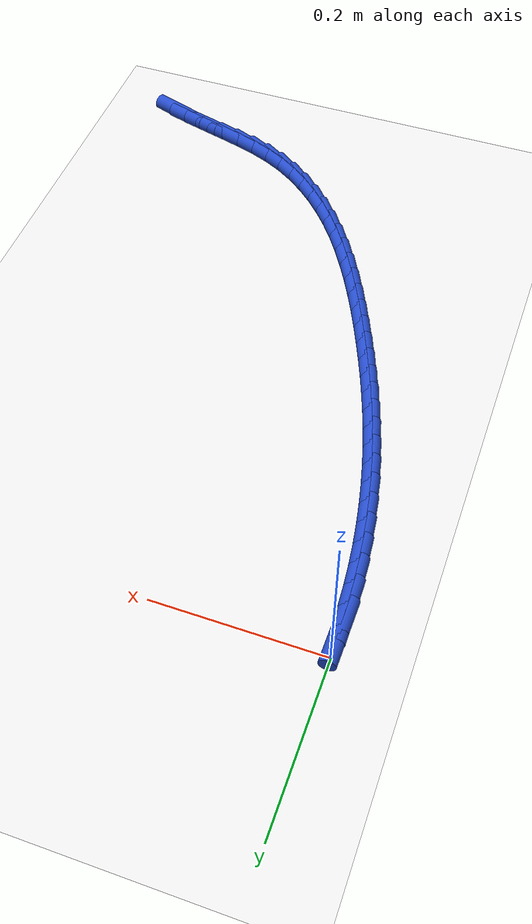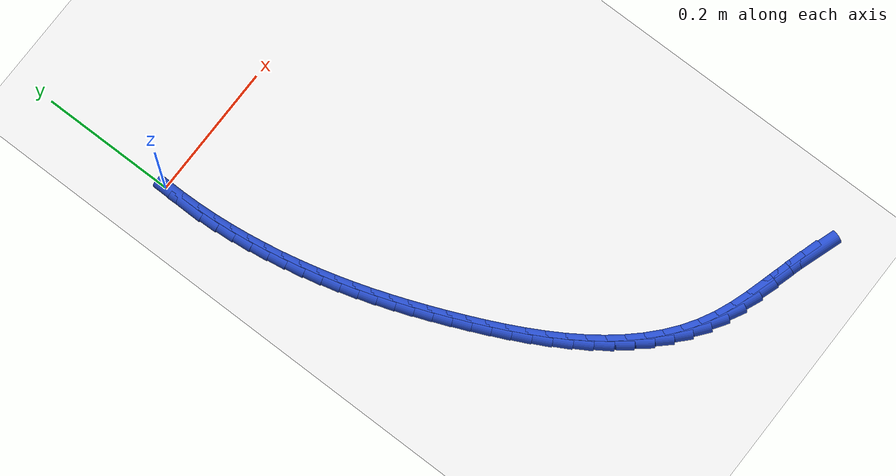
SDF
<sdf version="1.6">
 <world name="default">
  <model name="ground_plane">
   <static>1</static>
   <link name="link">
    <collision name="collision">
     <geometry><plane><normal>0 0 1</normal><size>100 100</size></plane></geometry>
     <surface><friction><ode><mu>100</mu><mu2>50</mu2></ode></friction></surface>
    </collision>
    <visual name="visual">
     <cast_shadows>0</cast_shadows>
     <geometry><plane><normal>0 0 1</normal><size>100 100</size></plane></geometry>
     <material>
      <script><uri>file://media/materials/scripts/gazebo.material</uri><name>Gazebo/WhiteGlow</name></script>
     </material>
    </visual>
   </link>
  </model>
  <model name="line">
   <link name="link_254">
    <pose>0.46334940315164597 -0.7511399641643934 0.01 0 1.57 -0.3245896864503864</pose>
    <collision name="collision">
     <geometry><cylinder><radius>0.01</radius><length>0.08</length></cylinder></geometry>
    </collision>
    <visual name="visual">
     <material>
      <script><name>Gazebo/Blue</name><uri>file://media/materials/scripts/gazebo.material</uri></script>
     </material>
     <geometry><cylinder><radius>0.01</radius><length>0.08</length></cylinder></geometry>
    </visual>
   </link>
   <link name="link_255">
    <pose>0.43837933831911885 -0.7427377640450256 0.01 0 1.57 -0.2835710241779089</pose>
    <collision name="collision">
     <geometry><cylinder><radius>0.01</radius><length>0.08</length></cylinder></geometry>
    </collision>
    <visual name="visual">
     <material>
      <script><name>Gazebo/Blue</name><uri>file://media/materials/scripts/gazebo.material</uri></script>
     </material>
     <geometry><cylinder><radius>0.01</radius><length>0.08</length></cylinder></geometry>
    </visual>
   </link>
   <link name="link_256">
    <pose>0.41276323724650177 -0.7352726015327206 0.01 0 1.57 -0.26970100801842917</pose>
    <collision name="collision">
     <geometry><cylinder><radius>0.01</radius><length>0.08</length></cylinder></geometry>
    </collision>
    <visual name="visual">
     <material>
      <script><name>Gazebo/Blue</name><uri>file://media/materials/scripts/gazebo.material</uri></script>
     </material>
     <geometry><cylinder><radius>0.01</radius><length>0.08</length></cylinder></geometry>
    </visual>
   </link>
   <link name="link_257">
    <pose>0.38689808697437095 -0.7281225358890053 0.01 0 1.57 -0.28221860912547664</pose>
    <collision name="collision">
     <geometry><cylinder><radius>0.01</radius><length>0.08</length></cylinder></geometry>
    </collision>
    <visual name="visual">
     <material>
      <script><name>Gazebo/Blue</name><uri>file://media/materials/scripts/gazebo.material</uri></script>
     </material>
     <geometry><cylinder><radius>0.01</radius><length>0.08</length></cylinder></geometry>
    </visual>
   </link>
   <link name="link_258">
    <pose>0.36118087454330167 -0.720665626375406 0.01 0 1.57 -0.3215693300814368</pose>
    <collision name="collision">
     <geometry><cylinder><radius>0.01</radius><length>0.08</length></cylinder></geometry>
    </collision>
    <visual name="visual">
     <material>
      <script><name>Gazebo/Blue</name><uri>file://media/materials/scripts/gazebo.material</uri></script>
     </material>
     <geometry><cylinder><radius>0.01</radius><length>0.08</length></cylinder></geometry>
    </visual>
   </link>
   <link name="link_259">
    <pose>0.3360085869938699 -0.7122799322534491 0.01 0 1.57 -0.3891666714263993</pose>
    <collision name="collision">
     <geometry><cylinder><radius>0.01</radius><length>0.08</length></cylinder></geometry>
    </collision>
    <visual name="visual">
     <material>
      <script><name>Gazebo/Blue</name><uri>file://media/materials/scripts/gazebo.material</uri></script>
     </material>
     <geometry><cylinder><radius>0.01</radius><length>0.08</length></cylinder></geometry>
    </visual>
   </link>
   <link name="link_260">
    <pose>0.31177821136665146 -0.7023435127846617 0.01 0 1.57 -0.4826670479727141</pose>
    <collision name="collision">
     <geometry><cylinder><radius>0.01</radius><length>0.08</length></cylinder></geometry>
    </collision>
    <visual name="visual">
     <material>
      <script><name>Gazebo/Blue</name><uri>file://media/materials/scripts/gazebo.material</uri></script>
     </material>
     <geometry><cylinder><radius>0.01</radius><length>0.08</length></cylinder></geometry>
    </visual>
   </link>
   <link name="link_261">
    <pose>0.2888364083128132 -0.6903218822925837 0.01 0 1.57 -0.5787622732264921</pose>
    <collision name="collision">
     <geometry><cylinder><radius>0.01</radius><length>0.08</length></cylinder></geometry>
    </collision>
    <visual name="visual">
     <material>
      <script><name>Gazebo/Blue</name><uri>file://media/materials/scripts/gazebo.material</uri></script>
     </material>
     <geometry><cylinder><radius>0.01</radius><length>0.08</length></cylinder></geometry>
    </visual>
   </link>
   <link name="link_262">
    <pose>0.26722889814206907 -0.6762035164443702 0.01 0 1.57 -0.667564483060663</pose>
    <collision name="collision">
     <geometry><cylinder><radius>0.01</radius><length>0.08</length></cylinder></geometry>
    </collision>
    <visual name="visual">
     <material>
      <script><name>Gazebo/Blue</name><uri>file://media/materials/scripts/gazebo.material</uri></script>
     </material>
     <geometry><cylinder><radius>0.01</radius><length>0.08</length></cylinder></geometry>
    </visual>
   </link>
   <link name="link_263">
    <pose>0.2468900265610563 -0.6601704329620149 0.01 0 1.57 -0.7482732215365248</pose>
    <collision name="collision">
     <geometry><cylinder><radius>0.01</radius><length>0.08</length></cylinder></geometry>
    </collision>
    <visual name="visual">
     <material>
      <script><name>Gazebo/Blue</name><uri>file://media/materials/scripts/gazebo.material</uri></script>
     </material>
     <geometry><cylinder><radius>0.01</radius><length>0.08</length></cylinder></geometry>
    </visual>
   </link>
   <link name="link_264">
    <pose>0.22775395909551766 -0.6424049626782191 0.01 0 1.57 -0.8206626935307101</pose>
    <collision name="collision">
     <geometry><cylinder><radius>0.01</radius><length>0.08</length></cylinder></geometry>
    </collision>
    <visual name="visual">
     <material>
      <script><name>Gazebo/Blue</name><uri>file://media/materials/scripts/gazebo.material</uri></script>
     </material>
     <geometry><cylinder><radius>0.01</radius><length>0.08</length></cylinder></geometry>
    </visual>
   </link>
   <link name="link_265">
    <pose>0.20975486127119622 -0.6230894364256837 0.01 0 1.57 -0.884913270917729</pose>
    <collision name="collision">
     <geometry><cylinder><radius>0.01</radius><length>0.08</length></cylinder></geometry>
    </collision>
    <visual name="visual">
     <material>
      <script><name>Gazebo/Blue</name><uri>file://media/materials/scripts/gazebo.material</uri></script>
     </material>
     <geometry><cylinder><radius>0.01</radius><length>0.08</length></cylinder></geometry>
    </visual>
   </link>
   <link name="link_266">
    <pose>0.1928268986138336 -0.6024061850371085 0.01 0 1.57 -0.9414561527479928</pose>
    <collision name="collision">
     <geometry><cylinder><radius>0.01</radius><length>0.08</length></cylinder></geometry>
    </collision>
    <visual name="visual">
     <material>
      <script><name>Gazebo/Blue</name><uri>file://media/materials/scripts/gazebo.material</uri></script>
     </material>
     <geometry><cylinder><radius>0.01</radius><length>0.08</length></cylinder></geometry>
    </visual>
   </link>
   <link name="link_267">
    <pose>0.17690423664917287 -0.5805375393451939 0.01 0 1.57 -0.9908460837417297</pose>
    <collision name="collision">
     <geometry><cylinder><radius>0.01</radius><length>0.08</length></cylinder></geometry>
    </collision>
    <visual name="visual">
     <material>
      <script><name>Gazebo/Blue</name><uri>file://media/materials/scripts/gazebo.material</uri></script>
     </material>
     <geometry><cylinder><radius>0.01</radius><length>0.08</length></cylinder></geometry>
    </visual>
   </link>
   <link name="link_268">
    <pose>0.16192104090295686 -0.5576658301826408 0.01 0 1.57 -1.0336699449402769</pose>
    <collision name="collision">
     <geometry><cylinder><radius>0.01</radius><length>0.08</length></cylinder></geometry>
    </collision>
    <visual name="visual">
     <material>
      <script><name>Gazebo/Blue</name><uri>file://media/materials/scripts/gazebo.material</uri></script>
     </material>
     <geometry><cylinder><radius>0.01</radius><length>0.08</length></cylinder></geometry>
    </visual>
   </link>
   <link name="link_269">
    <pose>0.1478114769009281 -0.53397338838215 0.01 0 1.57 -1.0704872438227178</pose>
    <collision name="collision">
     <geometry><cylinder><radius>0.01</radius><length>0.08</length></cylinder></geometry>
    </collision>
    <visual name="visual">
     <material>
      <script><name>Gazebo/Blue</name><uri>file://media/materials/scripts/gazebo.material</uri></script>
     </material>
     <geometry><cylinder><radius>0.01</radius><length>0.08</length></cylinder></geometry>
    </visual>
   </link>
   <link name="link_270">
    <pose>0.13450971016882934 -0.5096425447764219 0.01 0 1.57 -1.1017942889832857</pose>
    <collision name="collision">
     <geometry><cylinder><radius>0.01</radius><length>0.08</length></cylinder></geometry>
    </collision>
    <visual name="visual">
     <material>
      <script><name>Gazebo/Blue</name><uri>file://media/materials/scripts/gazebo.material</uri></script>
     </material>
     <geometry><cylinder><radius>0.01</radius><length>0.08</length></cylinder></geometry>
    </visual>
   </link>
   <link name="link_271">
    <pose>0.12194990623240312 -0.48485563019815714 0.01 0 1.57 -1.1280037503647404</pose>
    <collision name="collision">
     <geometry><cylinder><radius>0.01</radius><length>0.08</length></cylinder></geometry>
    </collision>
    <visual name="visual">
     <material>
      <script><name>Gazebo/Blue</name><uri>file://media/materials/scripts/gazebo.material</uri></script>
     </material>
     <geometry><cylinder><radius>0.01</radius><length>0.08</length></cylinder></geometry>
    </visual>
   </link>
   <link name="link_272">
    <pose>0.11006623061739217 -0.45979497548005643 0.01 0 1.57 -1.1494327855170017</pose>
    <collision name="collision">
     <geometry><cylinder><radius>0.01</radius><length>0.08</length></cylinder></geometry>
    </collision>
    <visual name="visual">
     <material>
      <script><name>Gazebo/Blue</name><uri>file://media/materials/scripts/gazebo.material</uri></script>
     </material>
     <geometry><cylinder><radius>0.01</radius><length>0.08</length></cylinder></geometry>
    </visual>
   </link>
   <link name="link_273">
    <pose>0.09879284884953907 -0.43464291145482004 0.01 0 1.57 -1.1663689204062562</pose>
    <collision name="collision">
     <geometry><cylinder><radius>0.01</radius><length>0.08</length></cylinder></geometry>
    </collision>
    <visual name="visual">
     <material>
      <script><name>Gazebo/Blue</name><uri>file://media/materials/scripts/gazebo.material</uri></script>
     </material>
     <geometry><cylinder><radius>0.01</radius><length>0.08</length></cylinder></geometry>
    </visual>
   </link>
   <link name="link_274">
    <pose>0.08806489505340147 -0.4095788792058152 0.01 0 1.57 -1.1816021891290687</pose>
    <collision name="collision">
     <geometry><cylinder><radius>0.01</radius><length>0.08</length></cylinder></geometry>
    </collision>
    <visual name="visual">
     <material>
      <script><name>Gazebo/Blue</name><uri>file://media/materials/scripts/gazebo.material</uri></script>
     </material>
     <geometry><cylinder><radius>0.01</radius><length>0.08</length></cylinder></geometry>
    </visual>
   </link>
   <link name="link_275">
    <pose>0.07785258038057621 -0.3846776698685161 0.01 0 1.57 -1.19851368993675</pose>
    <collision name="collision">
     <geometry><cylinder><radius>0.01</radius><length>0.08</length></cylinder></geometry>
    </collision>
    <visual name="visual">
     <material>
      <script><name>Gazebo/Blue</name><uri>file://media/materials/scripts/gazebo.material</uri></script>
     </material>
     <geometry><cylinder><radius>0.01</radius><length>0.08</length></cylinder></geometry>
    </visual>
   </link>
   <link name="link_276">
    <pose>0.06817024495818598 -0.3598824187518028 0.01 0 1.57 -1.2172684529815931</pose>
    <collision name="collision">
     <geometry><cylinder><radius>0.01</radius><length>0.08</length></cylinder></geometry>
    </collision>
    <visual name="visual">
     <material>
      <script><name>Gazebo/Blue</name><uri>file://media/materials/scripts/gazebo.material</uri></script>
     </material>
     <geometry><cylinder><radius>0.01</radius><length>0.08</length></cylinder></geometry>
    </visual>
   </link>
   <link name="link_277">
    <pose>0.05903503786394411 -0.33512788084963835 0.01 0 1.57 -1.2377841530649027</pose>
    <collision name="collision">
     <geometry><cylinder><radius>0.01</radius><length>0.08</length></cylinder></geometry>
    </collision>
    <visual name="visual">
     <material>
      <script><name>Gazebo/Blue</name><uri>file://media/materials/scripts/gazebo.material</uri></script>
     </material>
     <geometry><cylinder><radius>0.01</radius><length>0.08</length></cylinder></geometry>
    </visual>
   </link>
   <link name="link_278">
    <pose>0.05046410817556388 -0.3103488111559854 0.01 0 1.57 -1.2599458251199083</pose>
    <collision name="collision">
     <geometry><cylinder><radius>0.01</radius><length>0.08</length></cylinder></geometry>
    </collision>
    <visual name="visual">
     <material>
      <script><name>Gazebo/Blue</name><uri>file://media/materials/scripts/gazebo.material</uri></script>
     </material>
     <geometry><cylinder><radius>0.01</radius><length>0.08</length></cylinder></geometry>
    </visual>
   </link>
   <link name="link_279">
    <pose>0.042474604970758674 -0.2854799646648071 0.01 0 1.57 -1.2836063181945039</pose>
    <collision name="collision">
     <geometry><cylinder><radius>0.01</radius><length>0.08</length></cylinder></geometry>
    </collision>
    <visual name="visual">
     <material>
      <script><name>Gazebo/Blue</name><uri>file://media/materials/scripts/gazebo.material</uri></script>
     </material>
     <geometry><cylinder><radius>0.01</radius><length>0.08</length></cylinder></geometry>
    </visual>
   </link>
   <link name="link_280">
    <pose>0.035083677327242026 -0.2604560963700669 0.01 0 1.57 -1.3085883072557833</pose>
    <collision name="collision">
     <geometry><cylinder><radius>0.01</radius><length>0.08</length></cylinder></geometry>
    </collision>
    <visual name="visual">
     <material>
      <script><name>Gazebo/Blue</name><uri>file://media/materials/scripts/gazebo.material</uri></script>
     </material>
     <geometry><cylinder><radius>0.01</radius><length>0.08</length></cylinder></geometry>
    </visual>
   </link>
   <link name="link_281">
    <pose>0.028308474322726776 -0.23521196126572624 0.01 0 1.57 -1.3346874060936886</pose>
    <collision name="collision">
     <geometry><cylinder><radius>0.01</radius><length>0.08</length></cylinder></geometry>
    </collision>
    <visual name="visual">
     <material>
      <script><name>Gazebo/Blue</name><uri>file://media/materials/scripts/gazebo.material</uri></script>
     </material>
     <geometry><cylinder><radius>0.01</radius><length>0.08</length></cylinder></geometry>
    </visual>
   </link>
   <link name="link_282">
    <pose>0.022166178796020865 -0.20968251494493154 0.01 0 1.57 -1.3616150074656066</pose>
    <collision name="collision">
     <geometry><cylinder><radius>0.01</radius><length>0.08</length></cylinder></geometry>
    </collision>
    <visual name="visual">
     <material>
      <script><name>Gazebo/Blue</name><uri>file://media/materials/scripts/gazebo.material</uri></script>
     </material>
     <geometry><cylinder><radius>0.01</radius><length>0.08</length></cylinder></geometry>
    </visual>
   </link>
   <link name="link_283">
    <pose>0.016680604817999666 -0.18384211396690445 0.01 0 1.57 -1.3892088008006078</pose>
    <collision name="collision">
     <geometry><cylinder><radius>0.01</radius><length>0.08</length></cylinder></geometry>
    </collision>
    <visual name="visual">
     <material>
      <script><name>Gazebo/Blue</name><uri>file://media/materials/scripts/gazebo.material</uri></script>
     </material>
     <geometry><cylinder><radius>0.01</radius><length>0.08</length></cylinder></geometry>
    </visual>
   </link>
   <link name="link_284">
    <pose>0.011890111226725364 -0.15775153591680222 0.01 0 1.57 -1.4176332783454821</pose>
    <collision name="collision">
     <geometry><cylinder><radius>0.01</radius><length>0.08</length></cylinder></geometry>
    </collision>
    <visual name="visual">
     <material>
      <script><name>Gazebo/Blue</name><uri>file://media/materials/scripts/gazebo.material</uri></script>
     </material>
     <geometry><cylinder><radius>0.01</radius><length>0.08</length></cylinder></geometry>
    </visual>
   </link>
   <link name="link_285">
    <pose>0.007834986632898585 -0.13148302456064956 0.01 0 1.57 -1.447087540326409</pose>
    <collision name="collision">
     <geometry><cylinder><radius>0.01</radius><length>0.08</length></cylinder></geometry>
    </collision>
    <visual name="visual">
     <material>
      <script><name>Gazebo/Blue</name><uri>file://media/materials/scripts/gazebo.material</uri></script>
     </material>
     <geometry><cylinder><radius>0.01</radius><length>0.08</length></cylinder></geometry>
    </visual>
   </link>
   <link name="link_286">
    <pose>0.004555519647219978 -0.10510882366447147 0.01 0 1.57 -1.4777773815154345</pose>
    <collision name="collision">
     <geometry><cylinder><radius>0.01</radius><length>0.08</length></cylinder></geometry>
    </collision>
    <visual name="visual">
     <material>
      <script><name>Gazebo/Blue</name><uri>file://media/materials/scripts/gazebo.material</uri></script>
     </material>
     <geometry><cylinder><radius>0.01</radius><length>0.08</length></cylinder></geometry>
    </visual>
   </link>
   <link name="link_287">
    <pose>0.0020919988803901734 -0.07870117699429262 0.01 0 1.57 -1.5099176809375148</pose>
    <collision name="collision">
     <geometry><cylinder><radius>0.01</radius><length>0.08</length></cylinder></geometry>
    </collision>
    <visual name="visual">
     <material>
      <script><name>Gazebo/Blue</name><uri>file://media/materials/scripts/gazebo.material</uri></script>
     </material>
     <geometry><cylinder><radius>0.01</radius><length>0.08</length></cylinder></geometry>
    </visual>
   </link>
   <link name="link_288">
    <pose>0.0004847129431098146 -0.05233232831613782 0.01 0 1.57 -1.5437343188667279</pose>
    <collision name="collision">
     <geometry><cylinder><radius>0.01</radius><length>0.08</length></cylinder></geometry>
    </collision>
    <visual name="visual">
     <material>
      <script><name>Gazebo/Blue</name><uri>file://media/materials/scripts/gazebo.material</uri></script>
     </material>
     <geometry><cylinder><radius>0.01</radius><length>0.08</length></cylinder></geometry>
    </visual>
   </link>
   <link name="link_289">
    <pose>-0.00022604955392045885 -0.026074521396031936 0.01 0 1.57 1.562127178563709</pose>
    <collision name="collision">
     <geometry><cylinder><radius>0.01</radius><length>0.08</length></cylinder></geometry>
    </collision>
    <visual name="visual">
     <material>
      <script><name>Gazebo/Blue</name><uri>file://media/materials/scripts/gazebo.material</uri></script>
     </material>
     <geometry><cylinder><radius>0.01</radius><length>0.08</length></cylinder></geometry>
    </visual>
   </link>
  </model>
 </world>
</sdf>
